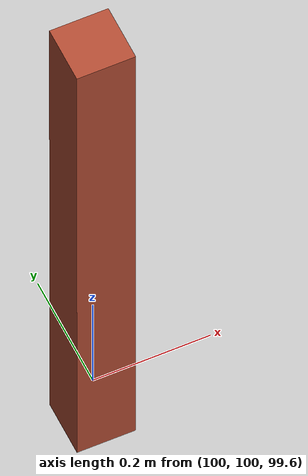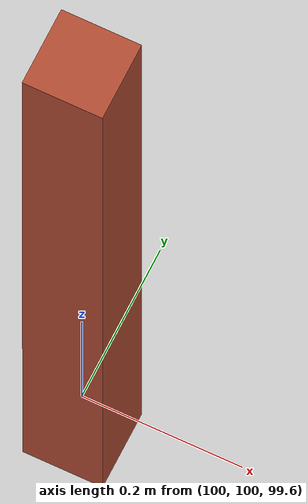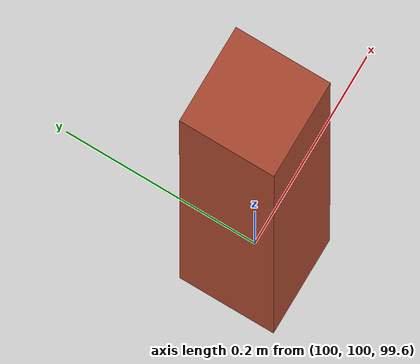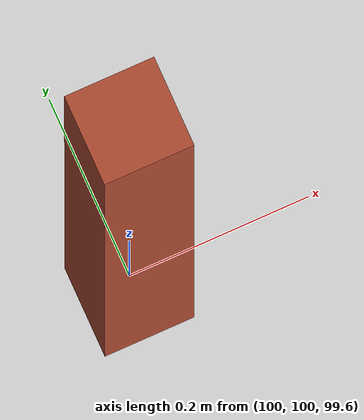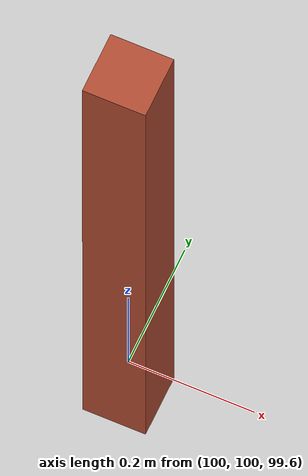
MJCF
<?xml version="1.0" encoding="utf-8"?>
<mujoco model="crazyflie_depth">

  <compiler angle="radian" autolimits="true"/>

  <option
    timestep="0.01"
    gravity="0 0 -9.81"
    integrator="RK4"
    iterations="1"
    tolerance="1e-10"/>

  <default>
    <geom contype="1" conaffinity="1" condim="3" friction="1.0 0.005 0.0001"/>
  </default>

  <worldbody>

    <light name="sky" directional="true" pos="0 0 5" dir="0 0 -1" diffuse="0.8 0.8 0.8"/>
    <geom name="floor" type="plane" pos="0 0 0" size="20 20 0.1"
          rgba="0.5 0.6 0.5 1" contype="1" conaffinity="1"/>

    <body name="obstacle_0"  mocap="true" pos="100 100 100"><geom name="obs_geom_0"  type="box" size="0.05 0.05 0.5" rgba="0.7 0.3 0.2 1"/></body>
    <body name="obstacle_1"  mocap="true" pos="100 100 100"><geom name="obs_geom_1"  type="box" size="0.05 0.05 0.5" rgba="0.7 0.3 0.2 1"/></body>
    <body name="obstacle_2"  mocap="true" pos="100 100 100"><geom name="obs_geom_2"  type="box" size="0.05 0.05 0.5" rgba="0.7 0.3 0.2 1"/></body>
    <body name="obstacle_3"  mocap="true" pos="100 100 100"><geom name="obs_geom_3"  type="box" size="0.05 0.05 0.5" rgba="0.7 0.3 0.2 1"/></body>
    <body name="obstacle_4"  mocap="true" pos="100 100 100"><geom name="obs_geom_4"  type="box" size="0.05 0.05 0.5" rgba="0.7 0.3 0.2 1"/></body>
    <body name="obstacle_5"  mocap="true" pos="100 100 100"><geom name="obs_geom_5"  type="box" size="0.05 0.05 0.5" rgba="0.7 0.3 0.2 1"/></body>
    <body name="obstacle_6"  mocap="true" pos="100 100 100"><geom name="obs_geom_6"  type="box" size="0.05 0.05 0.5" rgba="0.7 0.3 0.2 1"/></body>
    <body name="obstacle_7"  mocap="true" pos="100 100 100"><geom name="obs_geom_7"  type="box" size="0.05 0.05 0.5" rgba="0.7 0.3 0.2 1"/></body>
    <body name="obstacle_8"  mocap="true" pos="100 100 100"><geom name="obs_geom_8"  type="box" size="0.05 0.05 0.5" rgba="0.7 0.3 0.2 1"/></body>
    <body name="obstacle_9"  mocap="true" pos="100 100 100"><geom name="obs_geom_9"  type="box" size="0.05 0.05 0.5" rgba="0.7 0.3 0.2 1"/></body>
    <body name="obstacle_10" mocap="true" pos="100 100 100"><geom name="obs_geom_10" type="box" size="0.05 0.05 0.5" rgba="0.7 0.3 0.2 1"/></body>
    <body name="obstacle_11" mocap="true" pos="100 100 100"><geom name="obs_geom_11" type="box" size="0.05 0.05 0.5" rgba="0.7 0.3 0.2 1"/></body>
    <body name="obstacle_12" mocap="true" pos="100 100 100"><geom name="obs_geom_12" type="box" size="0.05 0.05 0.5" rgba="0.7 0.3 0.2 1"/></body>
    <body name="obstacle_13" mocap="true" pos="100 100 100"><geom name="obs_geom_13" type="box" size="0.05 0.05 0.5" rgba="0.7 0.3 0.2 1"/></body>
    <body name="obstacle_14" mocap="true" pos="100 100 100"><geom name="obs_geom_14" type="box" size="0.05 0.05 0.5" rgba="0.7 0.3 0.2 1"/></body>
    <body name="obstacle_15" mocap="true" pos="100 100 100"><geom name="obs_geom_15" type="box" size="0.05 0.05 0.5" rgba="0.7 0.3 0.2 1"/></body>

    <body name="drone" pos="0 0 0.5">
      <freejoint name="root"/>

      <!-- Mass and inertia: byte-identical to crazyflie.xml -->
      <inertial
        mass="0.0321"
        pos="0 0 0"
        diaginertia="1.4e-5 1.4e-5 2.17e-5"/>

      <!-- contype=0: drone does not participate in contact detection.
           Forces applied via xfrc_applied; drone-obstacle collision not modeled (M3). -->
      <geom name="body_viz" type="cylinder" size="0.023 0.008"
            pos="0 0 0" rgba="0.15 0.15 0.7 1" mass="0"
            contype="0" conaffinity="0"/>
      <geom name="arm_x" type="box" size="0.033 0.003 0.002"
            pos="0 0 0" rgba="0.3 0.3 0.3 1" mass="0"
            contype="0" conaffinity="0"/>
      <geom name="arm_y" type="box" size="0.003 0.033 0.002"
            pos="0 0 0" rgba="0.3 0.3 0.3 1" mass="0"
            contype="0" conaffinity="0"/>

      <site name="rotor0" pos=" 0.0325  0.0325 0.002" size="0.008" rgba="0.8 0.2 0.2 1"/>
      <site name="rotor1" pos=" 0.0325 -0.0325 0.002" size="0.008" rgba="0.2 0.8 0.2 1"/>
      <site name="rotor2" pos="-0.0325 -0.0325 0.002" size="0.008" rgba="0.2 0.2 0.8 1"/>
      <site name="rotor3" pos="-0.0325  0.0325 0.002" size="0.008" rgba="0.8 0.8 0.2 1"/>

      <geom name="prop0" type="cylinder" size="0.023 0.001"
            pos=" 0.0325  0.0325 0.005" rgba="0.6 0.1 0.1 0.6" mass="0"
            contype="0" conaffinity="0"/>
      <geom name="prop1" type="cylinder" size="0.023 0.001"
            pos=" 0.0325 -0.0325 0.005" rgba="0.1 0.6 0.1 0.6" mass="0"
            contype="0" conaffinity="0"/>
      <geom name="prop2" type="cylinder" size="0.023 0.001"
            pos="-0.0325 -0.0325 0.005" rgba="0.1 0.1 0.6 0.6" mass="0"
            contype="0" conaffinity="0"/>
      <geom name="prop3" type="cylinder" size="0.023 0.001"
            pos="-0.0325  0.0325 0.005" rgba="0.6 0.6 0.1 0.6" mass="0"
            contype="0" conaffinity="0"/>

      <camera name="depth_cam"
              pos="0.02 0 0"
              xyaxes="0 -1 0 0 0 1"
              fovy="60"/>

    </body>
  </worldbody>

  <!-- zfar=5.0 m: render frustum covers the M3 flight envelope.
       Use mjw.get_depth(rc, cam_id, 5.0, buf) to normalize 0–5 m → 0–1. -->
  <visual>
    <map znear="0.01" zfar="5.0"/>
    <headlight ambient="0.4 0.4 0.4" diffuse="0.6 0.6 0.6"/>
  </visual>

</mujoco>
